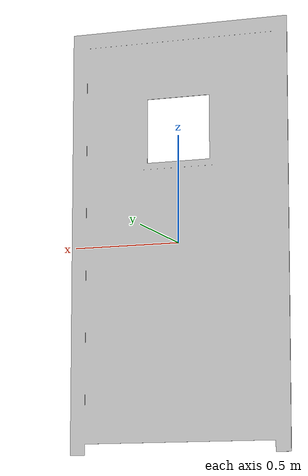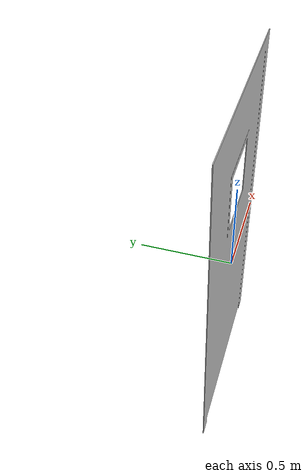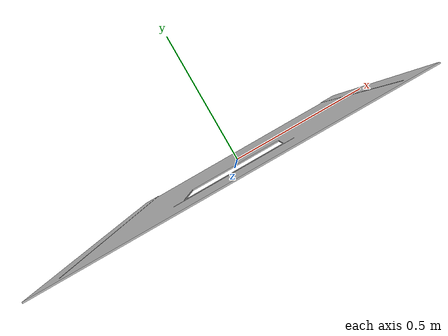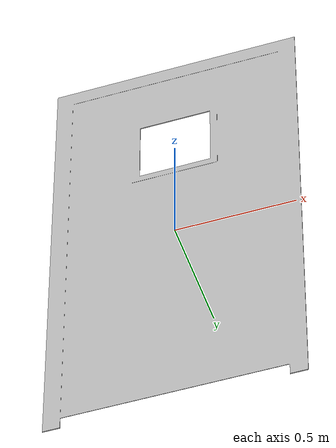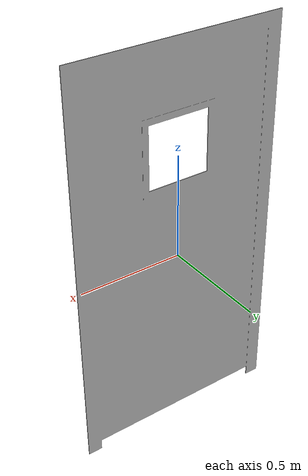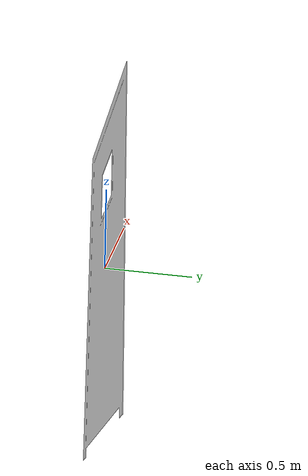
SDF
<?xml version='1.0' encoding='utf-8'?>
<sdf version="1.10">
    <model name="Door">
        <static>true</static>
        <link name="body">
            <pose>0 0 0 0 0 0</pose>
            <visual name="visual">
                <geometry>
                    <mesh>
                        <uri>model://Door/meshes/Door.obj</uri>
                    </mesh>
                </geometry>
            </visual>
            <collision name="collision">
                <geometry>
                    <mesh>
                        <uri>model://Door/meshes/Door.obj</uri>
                    </mesh>
                </geometry>
            </collision>
        </link>
    </model>
</sdf>
